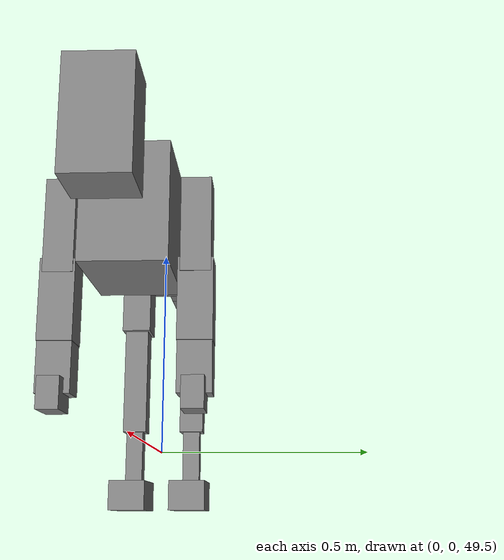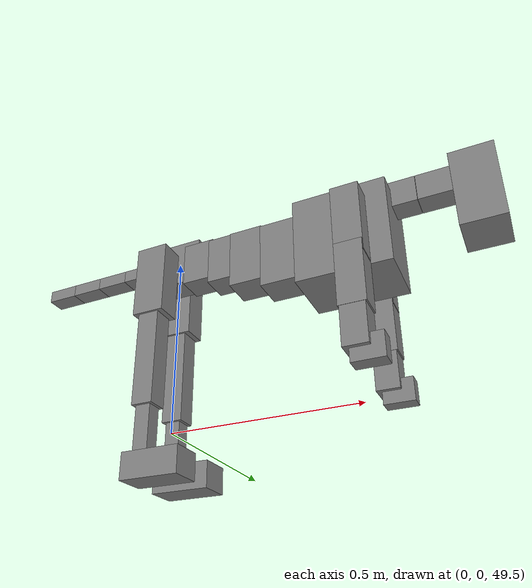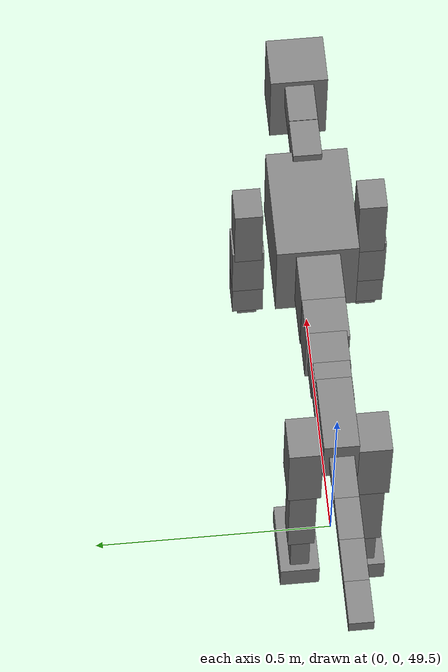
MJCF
<mujoco model="dog">

    <default>
        <joint armature="0.02" stiffness="1" damping="0.2" limited="true"/>
        <geom condim="3" friction="1 0.05 0.05" margin="0.01"/>
        <motor ctrllimited="true" ctrlrange="-1.0 1.0" forcelimited="true" gear="50"/>
    </default>

    <compiler inertiafromgeom="true" angle="radian"/>

    <option timestep="0.016" iterations="50" tolerance="1e-10" solver="Newton" jacobian="dense" cone="pyramidal"/>

    <size nconmax="20000" njmax="60000" nstack="5000000"/>
    <visual>
        <map force="0.1" zfar="30"/>
        <rgba haze="0.15 0.25 0.35 1"/>
        <quality shadowsize="2048"/>
        <global offwidth="800" offheight="800"/>
    </visual>

    <asset>
        <texture type="skybox" builtin="gradient" rgb1="0.3 0.5 0.7" rgb2="0 0 0" width="512" height="512"/>
        <texture name="texplane" type="2d" builtin="checker" rgb1=".2 .3 .4" rgb2=".1 0.15 0.2" width="512" height="512"
                 mark="cross" markrgb=".8 .8 .8"/>
        <texture name="texgeom" type="cube" builtin="flat" mark="cross" width="127" height="1278" rgb1="0.8 0.6 0.4"
                 rgb2="0.8 0.6 0.4" markrgb="1 1 1" random="0.01"/>

        <material name="matplane" reflectance="0.3" texture="texplane" texrepeat="1 1" texuniform="true"/>
        <material name="matgeom" texture="texgeom" texuniform="true" rgba="0.8 0.6 .4 1"/>
    </asset>

    <worldbody>
        <geom name="floor" pos="0 0 0" size="0 0 .25" type="plane" material="matplane" condim="3"/>

        <light directional="false" diffuse=".2 .2 .2" specular="0 0 0" pos="0 0 5" dir="0 0 -1" castshadow="false"/>
        <light mode="targetbodycom" target="torso" directional="false" diffuse=".8 .8 .8" specular="0.3 0.3 0.3"
               pos="0 0 4.0" dir="0 0 -1"/>

        <body name="root" pos="0 0 50">
            <freejoint name="root_1"/>
            <geom type="box" pos="0 0 -0.02" size="0.0774  0.0358  0.063" density="2030"/>

            <body name="spine1" pos="0.054 0 0">
                <joint name="spine1_y" axis="0 1 0" range="0 0.7" limited="true"/>
                <geom type="box" pos="0.02375 0 -0.03" size="0.04375  0.0375  0.05985" density="2030"/>

                <body name="spine2" pos="0.0612 0 0">
                    <joint name="spine2_y" axis="0 1 0" range="-0.15 0.15" limited="true"/>
                    <geom type="box" pos="0.03555  0  -0.04" size="0.04055  0.039  0.06615" density="2030"/>

                    <body name="spine3" pos="0.0730 0 0">
                        <joint name="spine3_y" axis="0 1 0" range="-0.15 0.15" limited="true"/>
                        <geom type="box" pos="0.03555  0  -0.057" size="0.04555  0.0445  0.081" density="2030"/>

                        <body name="spine4" pos="0.0780 0 0">
                            <joint name="spine4_y" axis="0 1 0" range="-0.15 0.15" limited="true"/>
                            <geom type="box" pos="0.05265  0  -0.07" size="0.05265  0.045  0.09135" density="2030"/>

                            <body name="torso" pos="0.1082 0 0">
                                <joint name="torso_y" axis="0 1 0" range="-0.15 0.15" limited="true"/>
                                <geom type="box" pos="0.11925  0  -0.085" size="0.11925  0.085  0.11745"
                                      density="2030"/>

                                <body name="neck1" pos="0.2160  0   0.0180">
                                    <joint name="neck1_y" axis="0 1 0" range="-1.2  -1" limited="true"/>
                                    <geom type="box" pos="0.0423  0  0" size="0.0423  0.03  0.036" density="2325"/>

                                    <body name="neck2" pos="0.0853  0  0">
                                        <joint name="neck2_y" axis="0 1 0" range="0.1  0" limited="true"/>
                                        <geom type="box" pos="0.0423  0  0" size="0.0423  0.03  0.036" density="2325"/>

                                        <body name="head" pos="0.0853  0  0">
                                            <joint name="head_y" axis="0 1 0" range="-0.3  -0.2" limited="true"/>
                                            <geom type="box" pos="0.0531  0  -0.055" size="0.0531  0.06  0.1044"
                                                  density="4030"/>

                                        </body>
                                    </body>
                                </body>

                                <body name="front_shoulder" pos="0.156  0   -0.0480">
                                    <joint name="front_shoulder_y" axis="0 1 0" range="-1 1.5" limited="true"/>
                                    <geom type="box" pos="0 0.13 -0.0663" size="0.0341  0.0292  0.0929" density="1158"/>
                                    <geom type="box" pos="0 -0.13 -0.0663" size="0.0341  0.0292  0.0929"
                                          density="1158"/>

                                    <body name="front_elbow" pos="0  0  -0.1325">
                                        <joint name="front_elbow_y" axis="0 1 0" range="-2 0" limited="true"/>
                                        <geom type="box" pos="0 0.13 -0.0791" size="0.0329  0.0336  0.0791"
                                              density="1081"/>
                                        <geom type="box" pos="0 -0.13 -0.0791" size="0.0329  0.0336  0.0791"
                                              density="1081"/>

                                        <body name="front_wrist" pos="0  0  -0.1582">
                                            <joint name="front_wrist_y" axis="0 1 0" range="-0.2 0" limited="true"/>
                                            <geom type="box" pos="0 0.13 -0.0424" size="0.0296  0.0329  0.0556"
                                                  density="1664"/>
                                            <geom type="box" pos="0 -0.13 -0.0424" size="0.0296  0.0329  0.0556"
                                                  density="1664"/>

                                            <body name="front_finger_end" pos="0  0  -0.0849">
                                                <joint name="front_finger_y" axis="0 1 0" range="-0.4 1"
                                                       limited="true"/>
                                                <geom type="box" pos="0.0211  0.13  -0.0154"
                                                      size="0.0386  0.0211  0.0304" density="1515"/>
                                                <geom type="box" pos="0.0211  -0.13  -0.0154"
                                                      size="0.0386  0.0211  0.0304" density="1515"/>

                                            </body>

                                        </body>
                                    </body>
                                </body>

                            </body>
                        </body>
                    </body>
                </body>
            </body>

            <body name="back_hip" pos="-0.03 0 -0.018">
                <joint name="back_hip_y" axis="0 1 0" range="-1.5 0.3" limited="true"/>
                <geom type="box" pos="0 0.07 -0.0772" size="0.0434  0.0341  0.1000" density="1154"/>
                <geom type="box" pos="0 -0.07 -0.0772" size="0.0434  0.0341  0.1000" density="1154"/>

                <body name="back_knee" pos="0  0  -0.1544">
                    <joint name="back_knee_y" axis="0 1 0" range="0 2.8" limited="true"/>
                    <geom type="box" pos="0 0.07 -0.1300" size="0.0284  0.0280  0.1456" density="1227"/>
                    <geom type="box" pos="0 -0.07 -0.1300" size="0.0284  0.0280  0.1456" density="1227"/>

                    <body name="back_ankle" pos="0  0  -0.2600">
                        <joint name="back_ankle_y" axis="0 1 0" range="-2.2 0" limited="true"/>
                        <geom type="box" pos="0 0.07 -0.0763" size="0.0201  0.0201  0.0875" density="1284"/>
                        <geom type="box" pos="0 -0.07 -0.0763" size="0.0201  0.0201  0.0875" density="1284"/>

                        <body name="back_toe_end" pos="0  0  -0.1525">
                            <joint name="back_toe_y" axis="0 1 0" range="-0.4 1" limited="true"/>
                            <geom type="box" pos="0.0418  0.07  -0.0190" size="0.0766  0.0418  0.0340" density="1515"/>
                            <geom type="box" pos="0.0418  -0.07  -0.0190" size="0.0766  0.0418  0.0340" density="1515"/>

                        </body>
                    </body>
                </body>
            </body>

            <body name="tail1" pos="-0.074 0 -0.006">
                <joint name="tail1_y" axis="0 1 0" range="-0.2 0.2" limited="true"/>
                <geom type="box" pos="-0.0536  0  0" size="0.045  0.025  0.0175" density="1587"/>

                <body name="tail2" pos="-0.09 0 0">
                    <joint name="tail2_y" axis="0 1 0" range="-0.2 0.2" limited="true"/>
                    <geom type="box" pos="-0.0536  0  0" size="0.045  0.025  0.0175" density="1587"/>

                    <body name="tail3" pos="-0.09 0 0">
                        <joint name="tail3_y" axis="0 1 0" range="-0.2 0.2" limited="true"/>
                        <geom type="box" pos="-0.0536  0  0" size="0.045  0.025  0.0175" density="1587"/>

                        <body name="tail4" pos="-0.09 0 0">
                            <joint name="tail4_y" axis="0 1 0" range="-0.2 0.2" limited="true"/>
                            <geom type="box" pos="-0.0536  0  0" size="0.045  0.025  0.0175" density="1587"/>

                        </body>
                    </body>
                </body>
            </body>
        </body>
    </worldbody>

    <actuator>
        <motor joint="spine1_y" forcerange="-150 150     "/>
        <motor joint="spine2_y" forcerange="-150 150     "/>
        <motor joint="spine3_y" forcerange="-150 150     "/>
        <motor joint="spine4_y" forcerange="-150 150     "/>
        <motor joint="torso_y" forcerange="-150 150     "/>
        <motor joint="neck1_y" forcerange="-100 100       "/>
        <motor joint="neck2_y" forcerange="-100 100       "/>
        <motor joint="head_y" forcerange="-150 150       "/>
        <motor joint="front_shoulder_y" forcerange="-130.11 164.30"/>
        <motor joint="front_elbow_y" forcerange="-158.43 185.85"/>
        <motor joint="front_wrist_y" forcerange="-128.88 134.07"/>
        <motor joint="front_finger_y" forcerange="-26.18 46.15"/>
        <motor joint="back_hip_y" forcerange="-373.07 281.11"/>
        <motor joint="back_knee_y" forcerange="-223.19 383.44"/>
        <motor joint="back_angle_y" forcerange="-120.18 101.47"/>
        <motor joint="back_toe_y" forcerange="-132.71 121.41"/>
        <motor joint="tail1_y" forcerange="-50 50     "/>
        <motor joint="tail2_y" forcerange="-50 50     "/>
        <motor joint="tail3_y" forcerange="-50 50     "/>
        <motor joint="tail4_y" forcerange="-50 50     "/>
    </actuator>
</mujoco>
